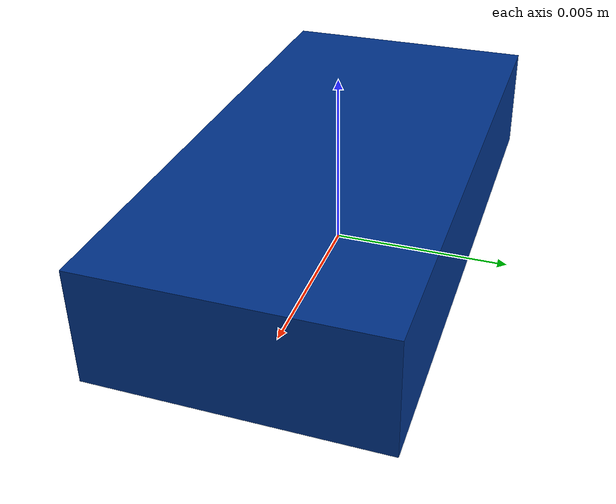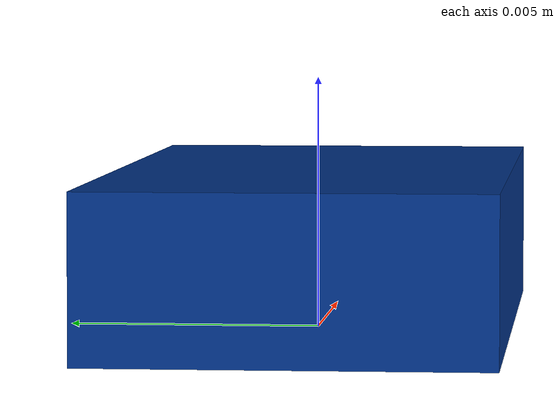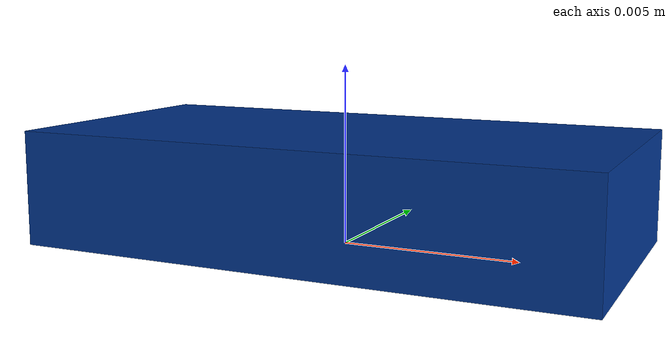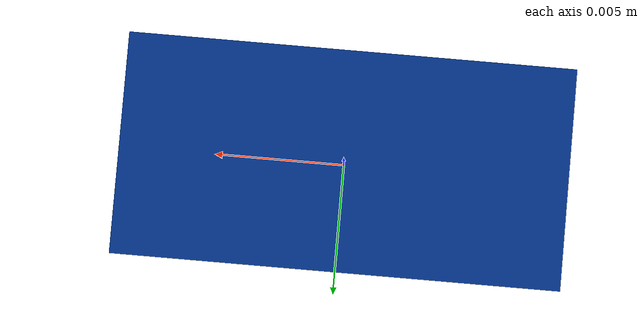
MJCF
<mujoco model="lego_tile_2x1">
  <compiler angle="radian"/>

  <default>
    <default class="lego_tile_2x1">
      <!-- density is tuned down from ABS's real ~1050 kg/m3 so the solid
           primitive body (no hollow underside) lands near a real piece's mass -->
      <geom type="box" material="lego_blue" density="500" friction="0.9 0.02 0.001"/>
    </default>
  </default>

  <asset>
    <material name="lego_blue" rgba="0.0 0.2 0.55 1"/>
  </asset>

  <worldbody>
    <body name="lego_tile_2x1" childclass="lego_tile_2x1">
      <freejoint name="lego_tile_2x1_freejoint"/>

      <!-- tile body: 2 studs long (x) x 1 studs wide (y) x 3.2mm tall (z) -->
      <!-- mass/inertia are left to MuJoCo, computed from geom volume x density above -->
      <geom name="lego_tile_2x1_body" size="0.0079 0.0039 0.0016" pos="0 0 0.0016"/>
    </body>
  </worldbody>
</mujoco>
